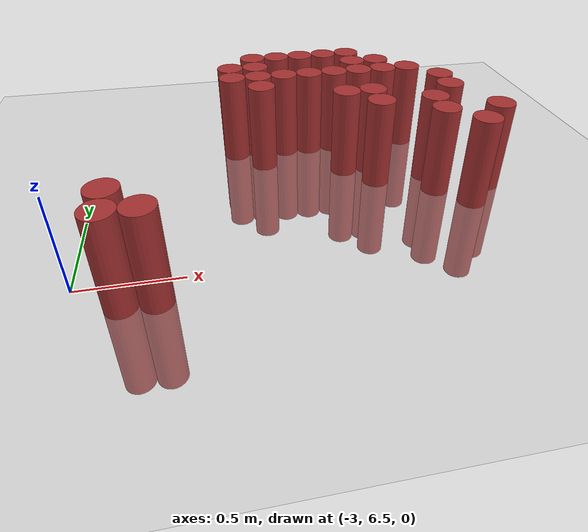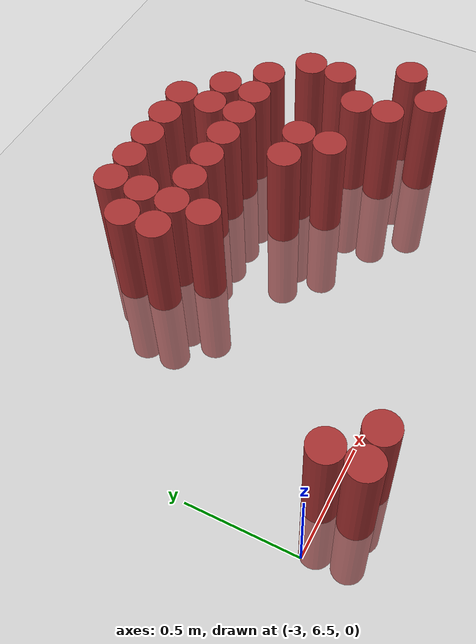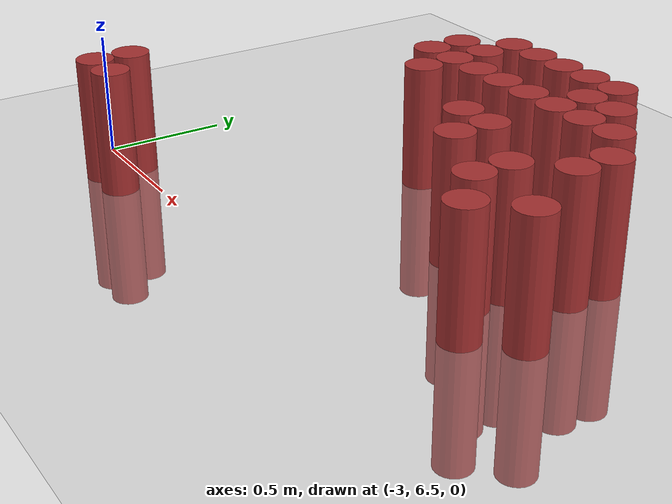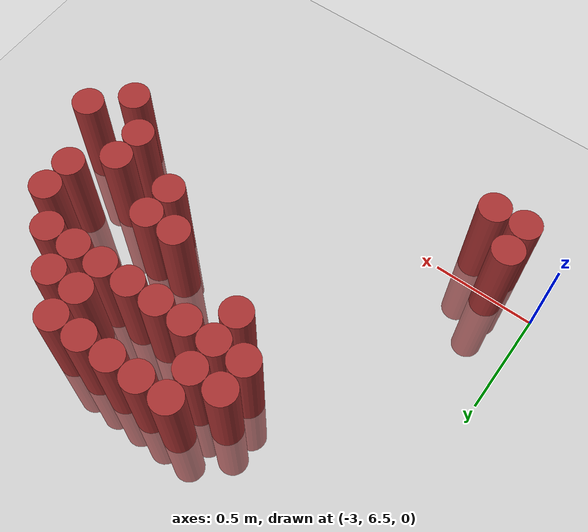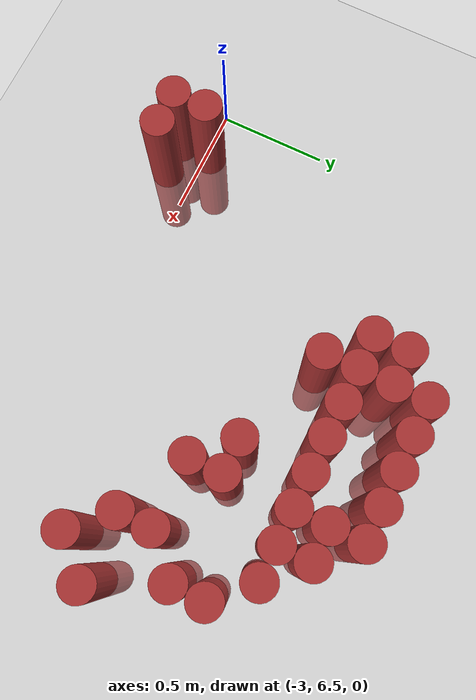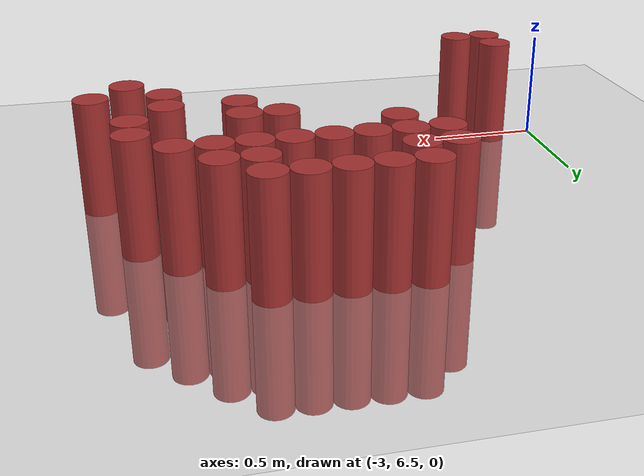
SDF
<sdf version="1.6">
 <world name="default">
  <model name="ground_plane">
   <static>1</static>
   <link name="link">
    <collision name="collision">
     <geometry><plane><normal>0 0 1</normal><size>100 100</size></plane></geometry>
     <surface><friction><ode><mu>100</mu><mu2>50</mu2></ode></friction></surface>
    </collision>
    <visual name="visual">
     <cast_shadows>0</cast_shadows>
     <geometry><plane><normal>0 0 1</normal><size>100 100</size></plane></geometry>
     <material>
      <script><uri>file://media/materials/scripts/gazebo.material</uri><name>Gazebo/Grey</name></script>
     </material>
    </visual>
   </link>
  </model>
  <model name="unit_cylinder_214">
   <static>1</static>
   <pose>-2.775000 6.375000 0.000000 0.000000 0.000000 0.000000</pose>
   <link name="link">
    <inertial>
     <mass>1</mass>
     <inertia><ixx>0.145833</ixx><ixy>0</ixy><ixz>0</ixz><iyy>0.145833</iyy><iyz>0</iyz><izz>0.125</izz></inertia>
    </inertial>
    <collision name="collision">
     <geometry><cylinder><radius>0.075000</radius><length>1</length></cylinder></geometry>
    </collision>
    <visual name="visual">
     <geometry><cylinder><radius>0.075000</radius><length>1</length></cylinder></geometry>
     <material>
      <ambient>0.648000 0.192000 0.192000 1</ambient>
      <diffuse>0.648000 0.192000 0.192000 1</diffuse>
     </material>
     <material>
      <script><name>Gazebo/Grey</name><uri>file://media/materials/scripts/gazebo.material</uri></script>
     </material>
    </visual>
    <sensor name="sensor_contact" type="contact"><contact><collision>collision</collision></contact></sensor>
   </link>
   <plugin filename="gz-sim-touchplugin-system" name="gz::sim::systems::TouchPlugin">
    <target>robot</target>
    <namespace>robot</namespace>
    <time>0.001</time>
    <enabled>true</enabled>
   </plugin>
  </model>
  <model name="unit_cylinder_215">
   <static>1</static>
   <pose>-2.775000 6.525000 0.000000 0.000000 0.000000 0.000000</pose>
   <link name="link">
    <inertial>
     <mass>1</mass>
     <inertia><ixx>0.145833</ixx><ixy>0</ixy><ixz>0</ixz><iyy>0.145833</iyy><iyz>0</iyz><izz>0.125</izz></inertia>
    </inertial>
    <collision name="collision">
     <geometry><cylinder><radius>0.075000</radius><length>1</length></cylinder></geometry>
    </collision>
    <visual name="visual">
     <geometry><cylinder><radius>0.075000</radius><length>1</length></cylinder></geometry>
     <material>
      <ambient>0.648000 0.192000 0.192000 1</ambient>
      <diffuse>0.648000 0.192000 0.192000 1</diffuse>
     </material>
     <material>
      <script><name>Gazebo/Grey</name><uri>file://media/materials/scripts/gazebo.material</uri></script>
     </material>
    </visual>
    <sensor name="sensor_contact" type="contact"><contact><collision>collision</collision></contact></sensor>
   </link>
   <plugin filename="gz-sim-touchplugin-system" name="gz::sim::systems::TouchPlugin">
    <target>robot</target>
    <namespace>robot</namespace>
    <time>0.001</time>
    <enabled>true</enabled>
   </plugin>
  </model>
  <model name="unit_cylinder_218">
   <static>1</static>
   <pose>-2.625000 6.375000 0.000000 0.000000 0.000000 0.000000</pose>
   <link name="link">
    <inertial>
     <mass>1</mass>
     <inertia><ixx>0.145833</ixx><ixy>0</ixy><ixz>0</ixz><iyy>0.145833</iyy><iyz>0</iyz><izz>0.125</izz></inertia>
    </inertial>
    <collision name="collision">
     <geometry><cylinder><radius>0.075000</radius><length>1</length></cylinder></geometry>
    </collision>
    <visual name="visual">
     <geometry><cylinder><radius>0.075000</radius><length>1</length></cylinder></geometry>
     <material>
      <ambient>0.648000 0.192000 0.192000 1</ambient>
      <diffuse>0.648000 0.192000 0.192000 1</diffuse>
     </material>
     <material>
      <script><name>Gazebo/Grey</name><uri>file://media/materials/scripts/gazebo.material</uri></script>
     </material>
    </visual>
    <sensor name="sensor_contact" type="contact"><contact><collision>collision</collision></contact></sensor>
   </link>
   <plugin filename="gz-sim-touchplugin-system" name="gz::sim::systems::TouchPlugin">
    <target>robot</target>
    <namespace>robot</namespace>
    <time>0.001</time>
    <enabled>true</enabled>
   </plugin>
  </model>
  <model name="unit_cylinder_219">
   <static>1</static>
   <pose>-2.175000 7.575000 0.000000 0.000000 0.000000 0.000000</pose>
   <link name="link">
    <inertial>
     <mass>1</mass>
     <inertia><ixx>0.145833</ixx><ixy>0</ixy><ixz>0</ixz><iyy>0.145833</iyy><iyz>0</iyz><izz>0.125</izz></inertia>
    </inertial>
    <collision name="collision">
     <geometry><cylinder><radius>0.075000</radius><length>1</length></cylinder></geometry>
    </collision>
    <visual name="visual">
     <geometry><cylinder><radius>0.075000</radius><length>1</length></cylinder></geometry>
     <material>
      <ambient>0.648000 0.192000 0.192000 1</ambient>
      <diffuse>0.648000 0.192000 0.192000 1</diffuse>
     </material>
     <material>
      <script><name>Gazebo/Grey</name><uri>file://media/materials/scripts/gazebo.material</uri></script>
     </material>
    </visual>
    <sensor name="sensor_contact" type="contact"><contact><collision>collision</collision></contact></sensor>
   </link>
   <plugin filename="gz-sim-touchplugin-system" name="gz::sim::systems::TouchPlugin">
    <target>robot</target>
    <namespace>robot</namespace>
    <time>0.001</time>
    <enabled>true</enabled>
   </plugin>
  </model>
  <model name="unit_cylinder_220">
   <static>1</static>
   <pose>-2.175000 7.725000 0.000000 0.000000 0.000000 0.000000</pose>
   <link name="link">
    <inertial>
     <mass>1</mass>
     <inertia><ixx>0.145833</ixx><ixy>0</ixy><ixz>0</ixz><iyy>0.145833</iyy><iyz>0</iyz><izz>0.125</izz></inertia>
    </inertial>
    <collision name="collision">
     <geometry><cylinder><radius>0.075000</radius><length>1</length></cylinder></geometry>
    </collision>
    <visual name="visual">
     <geometry><cylinder><radius>0.075000</radius><length>1</length></cylinder></geometry>
     <material>
      <ambient>0.648000 0.192000 0.192000 1</ambient>
      <diffuse>0.648000 0.192000 0.192000 1</diffuse>
     </material>
     <material>
      <script><name>Gazebo/Grey</name><uri>file://media/materials/scripts/gazebo.material</uri></script>
     </material>
    </visual>
    <sensor name="sensor_contact" type="contact"><contact><collision>collision</collision></contact></sensor>
   </link>
   <plugin filename="gz-sim-touchplugin-system" name="gz::sim::systems::TouchPlugin">
    <target>robot</target>
    <namespace>robot</namespace>
    <time>0.001</time>
    <enabled>true</enabled>
   </plugin>
  </model>
  <model name="unit_cylinder_221">
   <static>1</static>
   <pose>-2.025000 7.425000 0.000000 0.000000 0.000000 0.000000</pose>
   <link name="link">
    <inertial>
     <mass>1</mass>
     <inertia><ixx>0.145833</ixx><ixy>0</ixy><ixz>0</ixz><iyy>0.145833</iyy><iyz>0</iyz><izz>0.125</izz></inertia>
    </inertial>
    <collision name="collision">
     <geometry><cylinder><radius>0.075000</radius><length>1</length></cylinder></geometry>
    </collision>
    <visual name="visual">
     <geometry><cylinder><radius>0.075000</radius><length>1</length></cylinder></geometry>
     <material>
      <ambient>0.648000 0.192000 0.192000 1</ambient>
      <diffuse>0.648000 0.192000 0.192000 1</diffuse>
     </material>
     <material>
      <script><name>Gazebo/Grey</name><uri>file://media/materials/scripts/gazebo.material</uri></script>
     </material>
    </visual>
    <sensor name="sensor_contact" type="contact"><contact><collision>collision</collision></contact></sensor>
   </link>
   <plugin filename="gz-sim-touchplugin-system" name="gz::sim::systems::TouchPlugin">
    <target>robot</target>
    <namespace>robot</namespace>
    <time>0.001</time>
    <enabled>true</enabled>
   </plugin>
  </model>
  <model name="unit_cylinder_222">
   <static>1</static>
   <pose>-2.025000 7.575000 0.000000 0.000000 0.000000 0.000000</pose>
   <link name="link">
    <inertial>
     <mass>1</mass>
     <inertia><ixx>0.145833</ixx><ixy>0</ixy><ixz>0</ixz><iyy>0.145833</iyy><iyz>0</iyz><izz>0.125</izz></inertia>
    </inertial>
    <collision name="collision">
     <geometry><cylinder><radius>0.075000</radius><length>1</length></cylinder></geometry>
    </collision>
    <visual name="visual">
     <geometry><cylinder><radius>0.075000</radius><length>1</length></cylinder></geometry>
     <material>
      <ambient>0.648000 0.192000 0.192000 1</ambient>
      <diffuse>0.648000 0.192000 0.192000 1</diffuse>
     </material>
     <material>
      <script><name>Gazebo/Grey</name><uri>file://media/materials/scripts/gazebo.material</uri></script>
     </material>
    </visual>
    <sensor name="sensor_contact" type="contact"><contact><collision>collision</collision></contact></sensor>
   </link>
   <plugin filename="gz-sim-touchplugin-system" name="gz::sim::systems::TouchPlugin">
    <target>robot</target>
    <namespace>robot</namespace>
    <time>0.001</time>
    <enabled>true</enabled>
   </plugin>
  </model>
  <model name="unit_cylinder_223">
   <static>1</static>
   <pose>-2.025000 7.725000 0.000000 0.000000 0.000000 0.000000</pose>
   <link name="link">
    <inertial>
     <mass>1</mass>
     <inertia><ixx>0.145833</ixx><ixy>0</ixy><ixz>0</ixz><iyy>0.145833</iyy><iyz>0</iyz><izz>0.125</izz></inertia>
    </inertial>
    <collision name="collision">
     <geometry><cylinder><radius>0.075000</radius><length>1</length></cylinder></geometry>
    </collision>
    <visual name="visual">
     <geometry><cylinder><radius>0.075000</radius><length>1</length></cylinder></geometry>
     <material>
      <ambient>0.648000 0.192000 0.192000 1</ambient>
      <diffuse>0.648000 0.192000 0.192000 1</diffuse>
     </material>
     <material>
      <script><name>Gazebo/Grey</name><uri>file://media/materials/scripts/gazebo.material</uri></script>
     </material>
    </visual>
    <sensor name="sensor_contact" type="contact"><contact><collision>collision</collision></contact></sensor>
   </link>
   <plugin filename="gz-sim-touchplugin-system" name="gz::sim::systems::TouchPlugin">
    <target>robot</target>
    <namespace>robot</namespace>
    <time>0.001</time>
    <enabled>true</enabled>
   </plugin>
  </model>
  <model name="unit_cylinder_224">
   <static>1</static>
   <pose>-2.025000 7.875000 0.000000 0.000000 0.000000 0.000000</pose>
   <link name="link">
    <inertial>
     <mass>1</mass>
     <inertia><ixx>0.145833</ixx><ixy>0</ixy><ixz>0</ixz><iyy>0.145833</iyy><iyz>0</iyz><izz>0.125</izz></inertia>
    </inertial>
    <collision name="collision">
     <geometry><cylinder><radius>0.075000</radius><length>1</length></cylinder></geometry>
    </collision>
    <visual name="visual">
     <geometry><cylinder><radius>0.075000</radius><length>1</length></cylinder></geometry>
     <material>
      <ambient>0.648000 0.192000 0.192000 1</ambient>
      <diffuse>0.648000 0.192000 0.192000 1</diffuse>
     </material>
     <material>
      <script><name>Gazebo/Grey</name><uri>file://media/materials/scripts/gazebo.material</uri></script>
     </material>
    </visual>
    <sensor name="sensor_contact" type="contact"><contact><collision>collision</collision></contact></sensor>
   </link>
   <plugin filename="gz-sim-touchplugin-system" name="gz::sim::systems::TouchPlugin">
    <target>robot</target>
    <namespace>robot</namespace>
    <time>0.001</time>
    <enabled>true</enabled>
   </plugin>
  </model>
  <model name="unit_cylinder_225">
   <static>1</static>
   <pose>-1.875000 7.575000 0.000000 0.000000 0.000000 0.000000</pose>
   <link name="link">
    <inertial>
     <mass>1</mass>
     <inertia><ixx>0.145833</ixx><ixy>0</ixy><ixz>0</ixz><iyy>0.145833</iyy><iyz>0</iyz><izz>0.125</izz></inertia>
    </inertial>
    <collision name="collision">
     <geometry><cylinder><radius>0.075000</radius><length>1</length></cylinder></geometry>
    </collision>
    <visual name="visual">
     <geometry><cylinder><radius>0.075000</radius><length>1</length></cylinder></geometry>
     <material>
      <ambient>0.648000 0.192000 0.192000 1</ambient>
      <diffuse>0.648000 0.192000 0.192000 1</diffuse>
     </material>
     <material>
      <script><name>Gazebo/Grey</name><uri>file://media/materials/scripts/gazebo.material</uri></script>
     </material>
    </visual>
    <sensor name="sensor_contact" type="contact"><contact><collision>collision</collision></contact></sensor>
   </link>
   <plugin filename="gz-sim-touchplugin-system" name="gz::sim::systems::TouchPlugin">
    <target>robot</target>
    <namespace>robot</namespace>
    <time>0.001</time>
    <enabled>true</enabled>
   </plugin>
  </model>
  <model name="unit_cylinder_226">
   <static>1</static>
   <pose>-1.875000 7.875000 0.000000 0.000000 0.000000 0.000000</pose>
   <link name="link">
    <inertial>
     <mass>1</mass>
     <inertia><ixx>0.145833</ixx><ixy>0</ixy><ixz>0</ixz><iyy>0.145833</iyy><iyz>0</iyz><izz>0.125</izz></inertia>
    </inertial>
    <collision name="collision">
     <geometry><cylinder><radius>0.075000</radius><length>1</length></cylinder></geometry>
    </collision>
    <visual name="visual">
     <geometry><cylinder><radius>0.075000</radius><length>1</length></cylinder></geometry>
     <material>
      <ambient>0.648000 0.192000 0.192000 1</ambient>
      <diffuse>0.648000 0.192000 0.192000 1</diffuse>
     </material>
     <material>
      <script><name>Gazebo/Grey</name><uri>file://media/materials/scripts/gazebo.material</uri></script>
     </material>
    </visual>
    <sensor name="sensor_contact" type="contact"><contact><collision>collision</collision></contact></sensor>
   </link>
   <plugin filename="gz-sim-touchplugin-system" name="gz::sim::systems::TouchPlugin">
    <target>robot</target>
    <namespace>robot</namespace>
    <time>0.001</time>
    <enabled>true</enabled>
   </plugin>
  </model>
  <model name="unit_cylinder_235">
   <static>1</static>
   <pose>-1.725000 7.575000 0.000000 0.000000 0.000000 0.000000</pose>
   <link name="link">
    <inertial>
     <mass>1</mass>
     <inertia><ixx>0.145833</ixx><ixy>0</ixy><ixz>0</ixz><iyy>0.145833</iyy><iyz>0</iyz><izz>0.125</izz></inertia>
    </inertial>
    <collision name="collision">
     <geometry><cylinder><radius>0.075000</radius><length>1</length></cylinder></geometry>
    </collision>
    <visual name="visual">
     <geometry><cylinder><radius>0.075000</radius><length>1</length></cylinder></geometry>
     <material>
      <ambient>0.648000 0.192000 0.192000 1</ambient>
      <diffuse>0.648000 0.192000 0.192000 1</diffuse>
     </material>
     <material>
      <script><name>Gazebo/Grey</name><uri>file://media/materials/scripts/gazebo.material</uri></script>
     </material>
    </visual>
    <sensor name="sensor_contact" type="contact"><contact><collision>collision</collision></contact></sensor>
   </link>
   <plugin filename="gz-sim-touchplugin-system" name="gz::sim::systems::TouchPlugin">
    <target>robot</target>
    <namespace>robot</namespace>
    <time>0.001</time>
    <enabled>true</enabled>
   </plugin>
  </model>
  <model name="unit_cylinder_236">
   <static>1</static>
   <pose>-1.725000 7.875000 0.000000 0.000000 0.000000 0.000000</pose>
   <link name="link">
    <inertial>
     <mass>1</mass>
     <inertia><ixx>0.145833</ixx><ixy>0</ixy><ixz>0</ixz><iyy>0.145833</iyy><iyz>0</iyz><izz>0.125</izz></inertia>
    </inertial>
    <collision name="collision">
     <geometry><cylinder><radius>0.075000</radius><length>1</length></cylinder></geometry>
    </collision>
    <visual name="visual">
     <geometry><cylinder><radius>0.075000</radius><length>1</length></cylinder></geometry>
     <material>
      <ambient>0.648000 0.192000 0.192000 1</ambient>
      <diffuse>0.648000 0.192000 0.192000 1</diffuse>
     </material>
     <material>
      <script><name>Gazebo/Grey</name><uri>file://media/materials/scripts/gazebo.material</uri></script>
     </material>
    </visual>
    <sensor name="sensor_contact" type="contact"><contact><collision>collision</collision></contact></sensor>
   </link>
   <plugin filename="gz-sim-touchplugin-system" name="gz::sim::systems::TouchPlugin">
    <target>robot</target>
    <namespace>robot</namespace>
    <time>0.001</time>
    <enabled>true</enabled>
   </plugin>
  </model>
  <model name="unit_cylinder_246">
   <static>1</static>
   <pose>-1.575000 7.275000 0.000000 0.000000 0.000000 0.000000</pose>
   <link name="link">
    <inertial>
     <mass>1</mass>
     <inertia><ixx>0.145833</ixx><ixy>0</ixy><ixz>0</ixz><iyy>0.145833</iyy><iyz>0</iyz><izz>0.125</izz></inertia>
    </inertial>
    <collision name="collision">
     <geometry><cylinder><radius>0.075000</radius><length>1</length></cylinder></geometry>
    </collision>
    <visual name="visual">
     <geometry><cylinder><radius>0.075000</radius><length>1</length></cylinder></geometry>
     <material>
      <ambient>0.648000 0.192000 0.192000 1</ambient>
      <diffuse>0.648000 0.192000 0.192000 1</diffuse>
     </material>
     <material>
      <script><name>Gazebo/Grey</name><uri>file://media/materials/scripts/gazebo.material</uri></script>
     </material>
    </visual>
    <sensor name="sensor_contact" type="contact"><contact><collision>collision</collision></contact></sensor>
   </link>
   <plugin filename="gz-sim-touchplugin-system" name="gz::sim::systems::TouchPlugin">
    <target>robot</target>
    <namespace>robot</namespace>
    <time>0.001</time>
    <enabled>true</enabled>
   </plugin>
  </model>
  <model name="unit_cylinder_247">
   <static>1</static>
   <pose>-1.575000 7.575000 0.000000 0.000000 0.000000 0.000000</pose>
   <link name="link">
    <inertial>
     <mass>1</mass>
     <inertia><ixx>0.145833</ixx><ixy>0</ixy><ixz>0</ixz><iyy>0.145833</iyy><iyz>0</iyz><izz>0.125</izz></inertia>
    </inertial>
    <collision name="collision">
     <geometry><cylinder><radius>0.075000</radius><length>1</length></cylinder></geometry>
    </collision>
    <visual name="visual">
     <geometry><cylinder><radius>0.075000</radius><length>1</length></cylinder></geometry>
     <material>
      <ambient>0.648000 0.192000 0.192000 1</ambient>
      <diffuse>0.648000 0.192000 0.192000 1</diffuse>
     </material>
     <material>
      <script><name>Gazebo/Grey</name><uri>file://media/materials/scripts/gazebo.material</uri></script>
     </material>
    </visual>
    <sensor name="sensor_contact" type="contact"><contact><collision>collision</collision></contact></sensor>
   </link>
   <plugin filename="gz-sim-touchplugin-system" name="gz::sim::systems::TouchPlugin">
    <target>robot</target>
    <namespace>robot</namespace>
    <time>0.001</time>
    <enabled>true</enabled>
   </plugin>
  </model>
  <model name="unit_cylinder_248">
   <static>1</static>
   <pose>-1.575000 7.875000 0.000000 0.000000 0.000000 0.000000</pose>
   <link name="link">
    <inertial>
     <mass>1</mass>
     <inertia><ixx>0.145833</ixx><ixy>0</ixy><ixz>0</ixz><iyy>0.145833</iyy><iyz>0</iyz><izz>0.125</izz></inertia>
    </inertial>
    <collision name="collision">
     <geometry><cylinder><radius>0.075000</radius><length>1</length></cylinder></geometry>
    </collision>
    <visual name="visual">
     <geometry><cylinder><radius>0.075000</radius><length>1</length></cylinder></geometry>
     <material>
      <ambient>0.648000 0.192000 0.192000 1</ambient>
      <diffuse>0.648000 0.192000 0.192000 1</diffuse>
     </material>
     <material>
      <script><name>Gazebo/Grey</name><uri>file://media/materials/scripts/gazebo.material</uri></script>
     </material>
    </visual>
    <sensor name="sensor_contact" type="contact"><contact><collision>collision</collision></contact></sensor>
   </link>
   <plugin filename="gz-sim-touchplugin-system" name="gz::sim::systems::TouchPlugin">
    <target>robot</target>
    <namespace>robot</namespace>
    <time>0.001</time>
    <enabled>true</enabled>
   </plugin>
  </model>
  <model name="unit_cylinder_256">
   <static>1</static>
   <pose>-1.425000 7.125000 0.000000 0.000000 0.000000 0.000000</pose>
   <link name="link">
    <inertial>
     <mass>1</mass>
     <inertia><ixx>0.145833</ixx><ixy>0</ixy><ixz>0</ixz><iyy>0.145833</iyy><iyz>0</iyz><izz>0.125</izz></inertia>
    </inertial>
    <collision name="collision">
     <geometry><cylinder><radius>0.075000</radius><length>1</length></cylinder></geometry>
    </collision>
    <visual name="visual">
     <geometry><cylinder><radius>0.075000</radius><length>1</length></cylinder></geometry>
     <material>
      <ambient>0.648000 0.192000 0.192000 1</ambient>
      <diffuse>0.648000 0.192000 0.192000 1</diffuse>
     </material>
     <material>
      <script><name>Gazebo/Grey</name><uri>file://media/materials/scripts/gazebo.material</uri></script>
     </material>
    </visual>
    <sensor name="sensor_contact" type="contact"><contact><collision>collision</collision></contact></sensor>
   </link>
   <plugin filename="gz-sim-touchplugin-system" name="gz::sim::systems::TouchPlugin">
    <target>robot</target>
    <namespace>robot</namespace>
    <time>0.001</time>
    <enabled>true</enabled>
   </plugin>
  </model>
  <model name="unit_cylinder_257">
   <static>1</static>
   <pose>-1.425000 7.275000 0.000000 0.000000 0.000000 0.000000</pose>
   <link name="link">
    <inertial>
     <mass>1</mass>
     <inertia><ixx>0.145833</ixx><ixy>0</ixy><ixz>0</ixz><iyy>0.145833</iyy><iyz>0</iyz><izz>0.125</izz></inertia>
    </inertial>
    <collision name="collision">
     <geometry><cylinder><radius>0.075000</radius><length>1</length></cylinder></geometry>
    </collision>
    <visual name="visual">
     <geometry><cylinder><radius>0.075000</radius><length>1</length></cylinder></geometry>
     <material>
      <ambient>0.648000 0.192000 0.192000 1</ambient>
      <diffuse>0.648000 0.192000 0.192000 1</diffuse>
     </material>
     <material>
      <script><name>Gazebo/Grey</name><uri>file://media/materials/scripts/gazebo.material</uri></script>
     </material>
    </visual>
    <sensor name="sensor_contact" type="contact"><contact><collision>collision</collision></contact></sensor>
   </link>
   <plugin filename="gz-sim-touchplugin-system" name="gz::sim::systems::TouchPlugin">
    <target>robot</target>
    <namespace>robot</namespace>
    <time>0.001</time>
    <enabled>true</enabled>
   </plugin>
  </model>
  <model name="unit_cylinder_258">
   <static>1</static>
   <pose>-1.425000 7.575000 0.000000 0.000000 0.000000 0.000000</pose>
   <link name="link">
    <inertial>
     <mass>1</mass>
     <inertia><ixx>0.145833</ixx><ixy>0</ixy><ixz>0</ixz><iyy>0.145833</iyy><iyz>0</iyz><izz>0.125</izz></inertia>
    </inertial>
    <collision name="collision">
     <geometry><cylinder><radius>0.075000</radius><length>1</length></cylinder></geometry>
    </collision>
    <visual name="visual">
     <geometry><cylinder><radius>0.075000</radius><length>1</length></cylinder></geometry>
     <material>
      <ambient>0.648000 0.192000 0.192000 1</ambient>
      <diffuse>0.648000 0.192000 0.192000 1</diffuse>
     </material>
     <material>
      <script><name>Gazebo/Grey</name><uri>file://media/materials/scripts/gazebo.material</uri></script>
     </material>
    </visual>
    <sensor name="sensor_contact" type="contact"><contact><collision>collision</collision></contact></sensor>
   </link>
   <plugin filename="gz-sim-touchplugin-system" name="gz::sim::systems::TouchPlugin">
    <target>robot</target>
    <namespace>robot</namespace>
    <time>0.001</time>
    <enabled>true</enabled>
   </plugin>
  </model>
  <model name="unit_cylinder_259">
   <static>1</static>
   <pose>-1.425000 7.725000 0.000000 0.000000 0.000000 0.000000</pose>
   <link name="link">
    <inertial>
     <mass>1</mass>
     <inertia><ixx>0.145833</ixx><ixy>0</ixy><ixz>0</ixz><iyy>0.145833</iyy><iyz>0</iyz><izz>0.125</izz></inertia>
    </inertial>
    <collision name="collision">
     <geometry><cylinder><radius>0.075000</radius><length>1</length></cylinder></geometry>
    </collision>
    <visual name="visual">
     <geometry><cylinder><radius>0.075000</radius><length>1</length></cylinder></geometry>
     <material>
      <ambient>0.648000 0.192000 0.192000 1</ambient>
      <diffuse>0.648000 0.192000 0.192000 1</diffuse>
     </material>
     <material>
      <script><name>Gazebo/Grey</name><uri>file://media/materials/scripts/gazebo.material</uri></script>
     </material>
    </visual>
    <sensor name="sensor_contact" type="contact"><contact><collision>collision</collision></contact></sensor>
   </link>
   <plugin filename="gz-sim-touchplugin-system" name="gz::sim::systems::TouchPlugin">
    <target>robot</target>
    <namespace>robot</namespace>
    <time>0.001</time>
    <enabled>true</enabled>
   </plugin>
  </model>
  <model name="unit_cylinder_260">
   <static>1</static>
   <pose>-1.425000 7.875000 0.000000 0.000000 0.000000 0.000000</pose>
   <link name="link">
    <inertial>
     <mass>1</mass>
     <inertia><ixx>0.145833</ixx><ixy>0</ixy><ixz>0</ixz><iyy>0.145833</iyy><iyz>0</iyz><izz>0.125</izz></inertia>
    </inertial>
    <collision name="collision">
     <geometry><cylinder><radius>0.075000</radius><length>1</length></cylinder></geometry>
    </collision>
    <visual name="visual">
     <geometry><cylinder><radius>0.075000</radius><length>1</length></cylinder></geometry>
     <material>
      <ambient>0.648000 0.192000 0.192000 1</ambient>
      <diffuse>0.648000 0.192000 0.192000 1</diffuse>
     </material>
     <material>
      <script><name>Gazebo/Grey</name><uri>file://media/materials/scripts/gazebo.material</uri></script>
     </material>
    </visual>
    <sensor name="sensor_contact" type="contact"><contact><collision>collision</collision></contact></sensor>
   </link>
   <plugin filename="gz-sim-touchplugin-system" name="gz::sim::systems::TouchPlugin">
    <target>robot</target>
    <namespace>robot</namespace>
    <time>0.001</time>
    <enabled>true</enabled>
   </plugin>
  </model>
  <model name="unit_cylinder_265">
   <static>1</static>
   <pose>-1.275000 7.575000 0.000000 0.000000 0.000000 0.000000</pose>
   <link name="link">
    <inertial>
     <mass>1</mass>
     <inertia><ixx>0.145833</ixx><ixy>0</ixy><ixz>0</ixz><iyy>0.145833</iyy><iyz>0</iyz><izz>0.125</izz></inertia>
    </inertial>
    <collision name="collision">
     <geometry><cylinder><radius>0.075000</radius><length>1</length></cylinder></geometry>
    </collision>
    <visual name="visual">
     <geometry><cylinder><radius>0.075000</radius><length>1</length></cylinder></geometry>
     <material>
      <ambient>0.648000 0.192000 0.192000 1</ambient>
      <diffuse>0.648000 0.192000 0.192000 1</diffuse>
     </material>
     <material>
      <script><name>Gazebo/Grey</name><uri>file://media/materials/scripts/gazebo.material</uri></script>
     </material>
    </visual>
    <sensor name="sensor_contact" type="contact"><contact><collision>collision</collision></contact></sensor>
   </link>
   <plugin filename="gz-sim-touchplugin-system" name="gz::sim::systems::TouchPlugin">
    <target>robot</target>
    <namespace>robot</namespace>
    <time>0.001</time>
    <enabled>true</enabled>
   </plugin>
  </model>
  <model name="unit_cylinder_266">
   <static>1</static>
   <pose>-1.275000 7.725000 0.000000 0.000000 0.000000 0.000000</pose>
   <link name="link">
    <inertial>
     <mass>1</mass>
     <inertia><ixx>0.145833</ixx><ixy>0</ixy><ixz>0</ixz><iyy>0.145833</iyy><iyz>0</iyz><izz>0.125</izz></inertia>
    </inertial>
    <collision name="collision">
     <geometry><cylinder><radius>0.075000</radius><length>1</length></cylinder></geometry>
    </collision>
    <visual name="visual">
     <geometry><cylinder><radius>0.075000</radius><length>1</length></cylinder></geometry>
     <material>
      <ambient>0.648000 0.192000 0.192000 1</ambient>
      <diffuse>0.648000 0.192000 0.192000 1</diffuse>
     </material>
     <material>
      <script><name>Gazebo/Grey</name><uri>file://media/materials/scripts/gazebo.material</uri></script>
     </material>
    </visual>
    <sensor name="sensor_contact" type="contact"><contact><collision>collision</collision></contact></sensor>
   </link>
   <plugin filename="gz-sim-touchplugin-system" name="gz::sim::systems::TouchPlugin">
    <target>robot</target>
    <namespace>robot</namespace>
    <time>0.001</time>
    <enabled>true</enabled>
   </plugin>
  </model>
  <model name="unit_cylinder_269">
   <static>1</static>
   <pose>-1.125000 6.975000 0.000000 0.000000 0.000000 0.000000</pose>
   <link name="link">
    <inertial>
     <mass>1</mass>
     <inertia><ixx>0.145833</ixx><ixy>0</ixy><ixz>0</ixz><iyy>0.145833</iyy><iyz>0</iyz><izz>0.125</izz></inertia>
    </inertial>
    <collision name="collision">
     <geometry><cylinder><radius>0.075000</radius><length>1</length></cylinder></geometry>
    </collision>
    <visual name="visual">
     <geometry><cylinder><radius>0.075000</radius><length>1</length></cylinder></geometry>
     <material>
      <ambient>0.648000 0.192000 0.192000 1</ambient>
      <diffuse>0.648000 0.192000 0.192000 1</diffuse>
     </material>
     <material>
      <script><name>Gazebo/Grey</name><uri>file://media/materials/scripts/gazebo.material</uri></script>
     </material>
    </visual>
    <sensor name="sensor_contact" type="contact"><contact><collision>collision</collision></contact></sensor>
   </link>
   <plugin filename="gz-sim-touchplugin-system" name="gz::sim::systems::TouchPlugin">
    <target>robot</target>
    <namespace>robot</namespace>
    <time>0.001</time>
    <enabled>true</enabled>
   </plugin>
  </model>
  <model name="unit_cylinder_270">
   <static>1</static>
   <pose>-1.125000 7.125000 0.000000 0.000000 0.000000 0.000000</pose>
   <link name="link">
    <inertial>
     <mass>1</mass>
     <inertia><ixx>0.145833</ixx><ixy>0</ixy><ixz>0</ixz><iyy>0.145833</iyy><iyz>0</iyz><izz>0.125</izz></inertia>
    </inertial>
    <collision name="collision">
     <geometry><cylinder><radius>0.075000</radius><length>1</length></cylinder></geometry>
    </collision>
    <visual name="visual">
     <geometry><cylinder><radius>0.075000</radius><length>1</length></cylinder></geometry>
     <material>
      <ambient>0.648000 0.192000 0.192000 1</ambient>
      <diffuse>0.648000 0.192000 0.192000 1</diffuse>
     </material>
     <material>
      <script><name>Gazebo/Grey</name><uri>file://media/materials/scripts/gazebo.material</uri></script>
     </material>
    </visual>
    <sensor name="sensor_contact" type="contact"><contact><collision>collision</collision></contact></sensor>
   </link>
   <plugin filename="gz-sim-touchplugin-system" name="gz::sim::systems::TouchPlugin">
    <target>robot</target>
    <namespace>robot</namespace>
    <time>0.001</time>
    <enabled>true</enabled>
   </plugin>
  </model>
  <model name="unit_cylinder_271">
   <static>1</static>
   <pose>-1.125000 7.575000 0.000000 0.000000 0.000000 0.000000</pose>
   <link name="link">
    <inertial>
     <mass>1</mass>
     <inertia><ixx>0.145833</ixx><ixy>0</ixy><ixz>0</ixz><iyy>0.145833</iyy><iyz>0</iyz><izz>0.125</izz></inertia>
    </inertial>
    <collision name="collision">
     <geometry><cylinder><radius>0.075000</radius><length>1</length></cylinder></geometry>
    </collision>
    <visual name="visual">
     <geometry><cylinder><radius>0.075000</radius><length>1</length></cylinder></geometry>
     <material>
      <ambient>0.648000 0.192000 0.192000 1</ambient>
      <diffuse>0.648000 0.192000 0.192000 1</diffuse>
     </material>
     <material>
      <script><name>Gazebo/Grey</name><uri>file://media/materials/scripts/gazebo.material</uri></script>
     </material>
    </visual>
    <sensor name="sensor_contact" type="contact"><contact><collision>collision</collision></contact></sensor>
   </link>
   <plugin filename="gz-sim-touchplugin-system" name="gz::sim::systems::TouchPlugin">
    <target>robot</target>
    <namespace>robot</namespace>
    <time>0.001</time>
    <enabled>true</enabled>
   </plugin>
  </model>
  <model name="unit_cylinder_273">
   <static>1</static>
   <pose>-0.975000 6.825000 0.000000 0.000000 0.000000 0.000000</pose>
   <link name="link">
    <inertial>
     <mass>1</mass>
     <inertia><ixx>0.145833</ixx><ixy>0</ixy><ixz>0</ixz><iyy>0.145833</iyy><iyz>0</iyz><izz>0.125</izz></inertia>
    </inertial>
    <collision name="collision">
     <geometry><cylinder><radius>0.075000</radius><length>1</length></cylinder></geometry>
    </collision>
    <visual name="visual">
     <geometry><cylinder><radius>0.075000</radius><length>1</length></cylinder></geometry>
     <material>
      <ambient>0.648000 0.192000 0.192000 1</ambient>
      <diffuse>0.648000 0.192000 0.192000 1</diffuse>
     </material>
     <material>
      <script><name>Gazebo/Grey</name><uri>file://media/materials/scripts/gazebo.material</uri></script>
     </material>
    </visual>
    <sensor name="sensor_contact" type="contact"><contact><collision>collision</collision></contact></sensor>
   </link>
   <plugin filename="gz-sim-touchplugin-system" name="gz::sim::systems::TouchPlugin">
    <target>robot</target>
    <namespace>robot</namespace>
    <time>0.001</time>
    <enabled>true</enabled>
   </plugin>
  </model>
  <model name="unit_cylinder_274">
   <static>1</static>
   <pose>-0.975000 7.275000 0.000000 0.000000 0.000000 0.000000</pose>
   <link name="link">
    <inertial>
     <mass>1</mass>
     <inertia><ixx>0.145833</ixx><ixy>0</ixy><ixz>0</ixz><iyy>0.145833</iyy><iyz>0</iyz><izz>0.125</izz></inertia>
    </inertial>
    <collision name="collision">
     <geometry><cylinder><radius>0.075000</radius><length>1</length></cylinder></geometry>
    </collision>
    <visual name="visual">
     <geometry><cylinder><radius>0.075000</radius><length>1</length></cylinder></geometry>
     <material>
      <ambient>0.648000 0.192000 0.192000 1</ambient>
      <diffuse>0.648000 0.192000 0.192000 1</diffuse>
     </material>
     <material>
      <script><name>Gazebo/Grey</name><uri>file://media/materials/scripts/gazebo.material</uri></script>
     </material>
    </visual>
    <sensor name="sensor_contact" type="contact"><contact><collision>collision</collision></contact></sensor>
   </link>
   <plugin filename="gz-sim-touchplugin-system" name="gz::sim::systems::TouchPlugin">
    <target>robot</target>
    <namespace>robot</namespace>
    <time>0.001</time>
    <enabled>true</enabled>
   </plugin>
  </model>
  <model name="unit_cylinder_275">
   <static>1</static>
   <pose>-0.975000 7.425000 0.000000 0.000000 0.000000 0.000000</pose>
   <link name="link">
    <inertial>
     <mass>1</mass>
     <inertia><ixx>0.145833</ixx><ixy>0</ixy><ixz>0</ixz><iyy>0.145833</iyy><iyz>0</iyz><izz>0.125</izz></inertia>
    </inertial>
    <collision name="collision">
     <geometry><cylinder><radius>0.075000</radius><length>1</length></cylinder></geometry>
    </collision>
    <visual name="visual">
     <geometry><cylinder><radius>0.075000</radius><length>1</length></cylinder></geometry>
     <material>
      <ambient>0.648000 0.192000 0.192000 1</ambient>
      <diffuse>0.648000 0.192000 0.192000 1</diffuse>
     </material>
     <material>
      <script><name>Gazebo/Grey</name><uri>file://media/materials/scripts/gazebo.material</uri></script>
     </material>
    </visual>
    <sensor name="sensor_contact" type="contact"><contact><collision>collision</collision></contact></sensor>
   </link>
   <plugin filename="gz-sim-touchplugin-system" name="gz::sim::systems::TouchPlugin">
    <target>robot</target>
    <namespace>robot</namespace>
    <time>0.001</time>
    <enabled>true</enabled>
   </plugin>
  </model>
  <model name="unit_cylinder_278">
   <static>1</static>
   <pose>-0.825000 6.975000 0.000000 0.000000 0.000000 0.000000</pose>
   <link name="link">
    <inertial>
     <mass>1</mass>
     <inertia><ixx>0.145833</ixx><ixy>0</ixy><ixz>0</ixz><iyy>0.145833</iyy><iyz>0</iyz><izz>0.125</izz></inertia>
    </inertial>
    <collision name="collision">
     <geometry><cylinder><radius>0.075000</radius><length>1</length></cylinder></geometry>
    </collision>
    <visual name="visual">
     <geometry><cylinder><radius>0.075000</radius><length>1</length></cylinder></geometry>
     <material>
      <ambient>0.648000 0.192000 0.192000 1</ambient>
      <diffuse>0.648000 0.192000 0.192000 1</diffuse>
     </material>
     <material>
      <script><name>Gazebo/Grey</name><uri>file://media/materials/scripts/gazebo.material</uri></script>
     </material>
    </visual>
    <sensor name="sensor_contact" type="contact"><contact><collision>collision</collision></contact></sensor>
   </link>
   <plugin filename="gz-sim-touchplugin-system" name="gz::sim::systems::TouchPlugin">
    <target>robot</target>
    <namespace>robot</namespace>
    <time>0.001</time>
    <enabled>true</enabled>
   </plugin>
  </model>
 </world>
</sdf>
